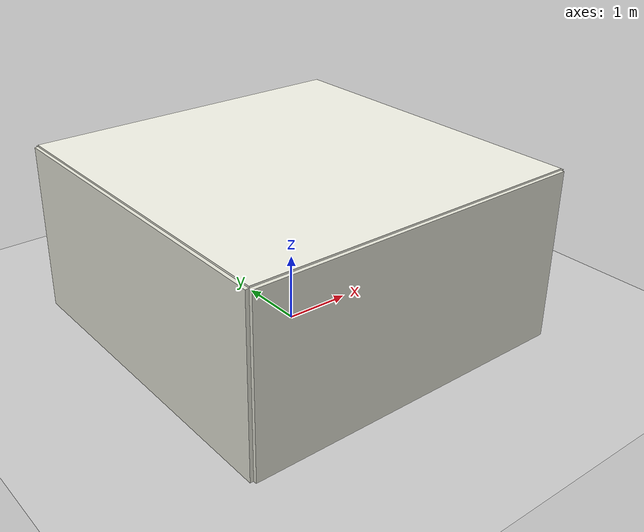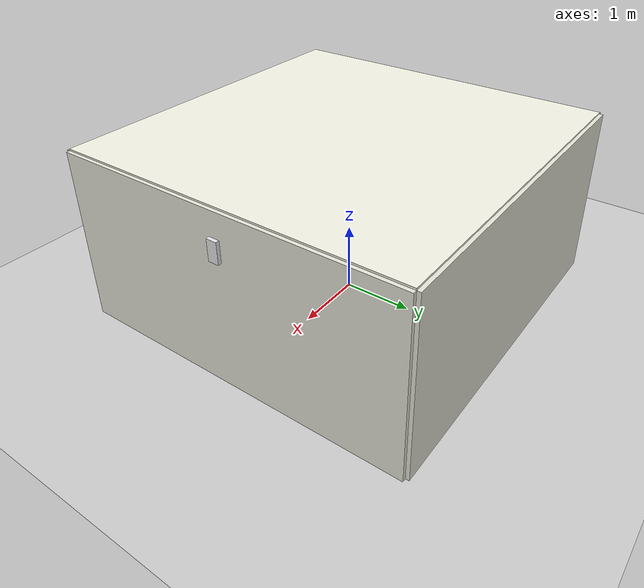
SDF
<?xml version="1.0"?>
<sdf version="1.9">
  <world name="smart_home">

    <!-- 物理引擎 -->
    <physics name="1ms" type="ignored">
      <max_step_size>0.001</max_step_size>
      <real_time_factor>1.0</real_time_factor>
    </physics>

    <!-- 光照 -->
    <light type="directional" name="sun">
      <pose>0 0 10 0 0 0</pose>
      <diffuse>0.8 0.8 0.8 1</diffuse>
    </light>

    <!-- 地面 -->
    <model name="ground_plane">
      <static>true</static>
      <link name="link">
        <collision name="collision">
          <geometry><plane><normal>0 0 1</normal><size>20 20</size></plane></geometry>
        </collision>
        <visual name="visual">
          <geometry><plane><normal>0 0 1</normal><size>20 20</size></plane></geometry>
          <material><ambient>0.8 0.8 0.8</ambient></material>
        </visual>
      </link>
    </model>

    <!-- 四面墙 -->
    <model name="wall_north">
      <static>true</static>
      <pose>0 2.5 1.25 0 0 0</pose>
      <link name="link">
        <visual name="visual">
          <geometry><box><size>5 0.1 2.5</size></box></geometry>
          <material><ambient>0.9 0.9 0.85</ambient></material>
        </visual>
        <collision name="collision">
          <geometry><box><size>5 0.1 2.5</size></box></geometry>
        </collision>
      </link>
    </model>

    <model name="wall_south">
      <static>true</static>
      <pose>0 -2.5 1.25 0 0 0</pose>
      <link name="link">
        <visual name="visual">
          <geometry><box><size>5 0.1 2.5</size></box></geometry>
          <material><ambient>0.9 0.9 0.85</ambient></material>
        </visual>
        <collision name="collision">
          <geometry><box><size>5 0.1 2.5</size></box></geometry>
        </collision>
      </link>
    </model>

    <model name="wall_east">
      <static>true</static>
      <pose>2.5 0 1.25 0 0 1.5708</pose>
      <link name="link">
        <visual name="visual">
          <geometry><box><size>5 0.1 2.5</size></box></geometry>
          <material><ambient>0.9 0.9 0.85</ambient></material>
        </visual>
        <collision name="collision">
          <geometry><box><size>5 0.1 2.5</size></box></geometry>
        </collision>
      </link>
    </model>

    <model name="wall_west">
      <static>true</static>
      <pose>-2.5 0 1.25 0 0 1.5708</pose>
      <link name="link">
        <visual name="visual">
          <geometry><box><size>5 0.1 2.5</size></box></geometry>
          <material><ambient>0.9 0.9 0.85</ambient></material>
        </visual>
        <collision name="collision">
          <geometry><box><size>5 0.1 2.5</size></box></geometry>
        </collision>
      </link>
    </model>

    <!-- 天花板 -->
    <model name="ceiling">
      <static>true</static>
      <pose>0 0 2.5 0 0 0</pose>
      <link name="link">
        <visual name="visual">
          <geometry><box><size>5 5 0.05</size></box></geometry>
          <material><ambient>0.95 0.95 0.9</ambient></material>
        </visual>
        <collision name="collision">
          <geometry><box><size>5 5 0.05</size></box></geometry>
        </collision>
      </link>
    </model>

    <!-- 天花板轨道 - 模拟轨道走线 -->
    <model name="ceiling_track">
      <static>true</static>
      <pose>0 0 2.45 0 0 0</pose>
      <link name="track">
        <visual name="visual">
          <geometry><box><size>3.0 0.02 0.01</size></box></geometry>
          <material><ambient>0.3 0.3 0.3</ambient></material>
        </visual>
      </link>
    </model>

    <!-- 简单家具 - 沙发 -->
    <model name="sofa">
      <static>true</static>
      <pose>-1.5 -1.5 0.4 0 0 0</pose>
      <link name="sofa_body">
        <visual name="visual">
          <geometry><box><size>1.5 0.6 0.8</size></box></geometry>
          <material><ambient>0.4 0.3 0.2</ambient></material>
        </visual>
      </link>
    </model>

    <!-- 简单家具 - 桌子 -->
    <model name="table">
      <static>true</static>
      <pose>1.0 1.0 0.4 0 0 0</pose>
      <link name="table_top">
        <visual name="visual">
          <geometry><box><size>1.0 0.6 0.05</size></box></geometry>
          <material><ambient>0.6 0.4 0.2</ambient></material>
        </visual>
      </link>
    </model>

    <!-- 可调光灯模型（智能设备） -->
    <model name="smart_light">
      <static>true</static>
      <pose>0 0 2.3 0 0 0</pose>
      <link name="light_body">
        <visual name="visual">
          <geometry><sphere><radius>0.1</radius></sphere></geometry>
          <material>
            <ambient>1.0 1.0 0.8 1.0</ambient>
            <emissive>1.0 0.9 0.7 1.0</emissive>
          </material>
        </visual>
      </link>
    </model>

    <!-- 温度传感器模型 -->
    <model name="temp_sensor">
      <static>true</static>
      <pose>1.5 1.5 1.5 0 0 0</pose>
      <link name="sensor_body">
        <visual name="visual">
          <geometry><box><size>0.05 0.05 0.02</size></box></geometry>
          <material><ambient>0.8 0.8 0.8</ambient></material>
        </visual>
      </link>
    </model>

    <!-- 窗帘模型 -->
    <model name="curtain">
      <static>true</static>
      <pose>0 -2.4 1.5 0 0 0</pose>
      <link name="curtain_body">
        <visual name="visual">
          <geometry><box><size>1.0 0.02 1.5</size></box></geometry>
          <material><ambient>0.7 0.8 0.9</ambient></material>
        </visual>
      </link>
    </model>

    <!-- 空调模型 -->
    <model name="ac_unit">
      <static>true</static>
      <pose>2.4 0 2.0 0 0 0</pose>
      <link name="ac_body">
        <visual name="visual">
          <geometry><box><size>0.4 0.15 0.3</size></box></geometry>
          <material><ambient>0.9 0.9 0.9</ambient></material>
        </visual>
      </link>
    </model>

  </world>
</sdf>
